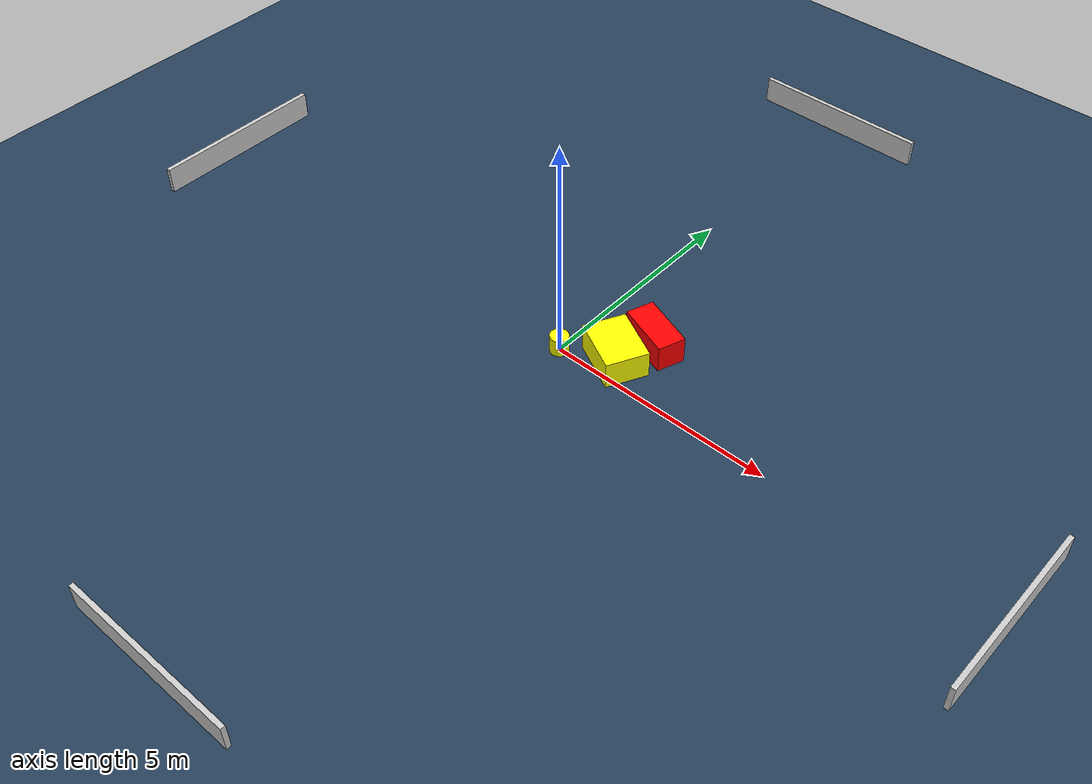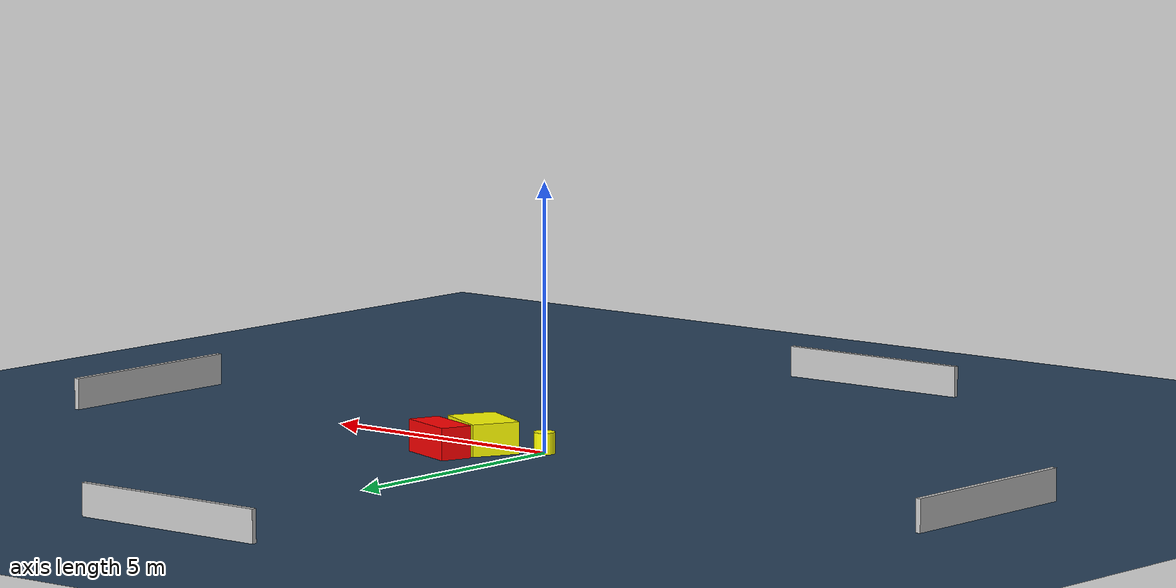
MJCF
<?xml version="1.0" ?>
<mujoco model="generated_environment">
  <option timestep="0.01" integrator="RK4" cone="elliptic"/>
  <default>
    <geom density="1"/>
  </default>
  <asset>
    <texture builtin="gradient" height="3072" name="skybox" rgb1="0.3 0.5 0.7" rgb2="0 0 0" type="skybox" width="512"/>
    <texture builtin="checker" height="300" name="groundplane" rgb1="0.2 0.3 0.4" rgb2="0.1 0.2 0.3" type="2d" width="300"/>
    <material name="groundplane" reflectance="0.2" texrepeat="5 5" texture="groundplane"/>
  </asset>
  <worldbody>
    <light dir="0 0 -1" directional="true" pos="0 0 1.5"/>
    <geom condim="3" friction="0.5 0.005 0.001" material="groundplane" name="floor" pos="0 0 0" size="0 0 0.05" type="plane"/>
    <body name="walls">
      <geom name="wall_1" condim="4" pos="-10.0 0.0 0.3" rgba="0.800000011920929 0.800000011920929 0.800000011920929 1.0" size="0.05 2.0 0.3" type="box"/>
      <geom name="wall_2" condim="4" pos="10.0 0.0 0.3" rgba="0.800000011920929 0.800000011920929 0.800000011920929 1.0" size="0.05 2.0 0.3" type="box"/>
      <geom name="wall_3" condim="4" pos="0.0 -10.0 0.3" rgba="0.800000011920929 0.800000011920929 0.800000011920929 1.0" size="2.0 0.05 0.3" type="box"/>
      <geom name="wall_4" condim="4" pos="0.0 10.0 0.3" rgba="0.800000011920929 0.800000011920929 0.800000011920929 1.0" size="2.0 0.05 0.3" type="box"/>
    </body>
    <body name="robot">
      <joint name="joint_x" type="slide" pos="0 0 0" axis="1 0 0"/>
      <joint name="joint_y" type="slide" pos="0 0 0" axis="0 1 0"/>
      <geom name="robot" type="cylinder" pos="0.0 0.0 0.2" size="0.2 0.2 0.0" mass="5.0" friction="1.0 0.005 0.0001" condim="4" rgba="1.0 1.0 0.0 1.0"/>
    </body>
    <body name="obstacle_1_movable">
      <geom name="obstacle_1_movable" condim="4" pos="1.0436876942874065 0.4962866043268558 0.3" euler="0 0 152.89026340442481" friction="0.0 0.005 0.001" rgba="1.0 1.0 0.0 1.0" size="0.6049983287274591 0.46532957961919197 0.3" type="box" mass="0.1"/>
      <joint type="free"/>
    </body>
    <body name="obstacle_2_static">
      <geom name="obstacle_2_static" condim="4" pos="1.3770050687466004 1.3327127403788395 0.3" euler="0 0 250.33298901737658" friction="0.0 0.005 0.001" rgba="1.0 0.0 0.0 1.0" size="0.3047578678705086 0.6134285096052388 0.3" type="box"/>
    </body>
  </worldbody>
  <actuator>
    <motor name="actuator_x" joint="joint_x" gear="1" ctrlrange="-1 1"/>
    <motor name="actuator_y" joint="joint_y" gear="1" ctrlrange="-1 1"/>
  </actuator>
</mujoco>
